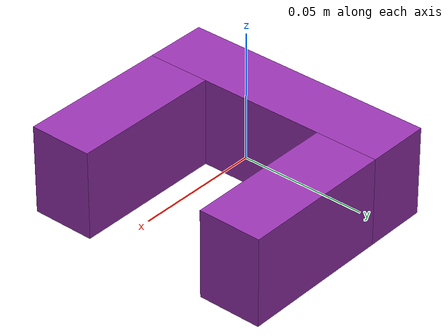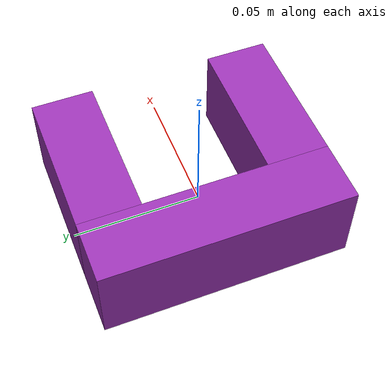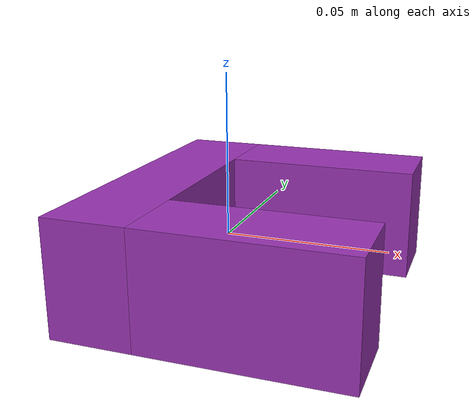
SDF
<?xml version='1.0'?>
<sdf version='1.6'>
  <model name='C_shape'>
    <link name='link'>
      <inertial>
        <mass>0.2</mass>
        <inertia>
          <ixx>0.0003</ixx> <ixy>0</ixy> <ixz>0</ixz>
          <iyy>0.0003</iyy> <iyz>0</iyz>
          <izz>0.0006</izz>
        </inertia>
      </inertial>

      <visual name='spine_vis'>
        <pose>-0.02 0 0 0 0 0</pose>
        <geometry>
           <box><size>0.025 0.10 0.035</size></box>
        </geometry>
        <material><script><name>Gazebo/Purple</name></script></material>
      </visual>
      <collision name='spine_col'>
        <pose>-0.02 0 0 0 0 0</pose>
        <geometry>
           <box><size>0.025 0.10 0.035</size></box>
        </geometry>
        <surface>
           <friction><ode><mu>100.0</mu><mu2>100.0</mu2></ode></friction>
           <contact><ode><kp>100000.0</kp><kd>1.0</kd><min_depth>0.001</min_depth></ode></contact>
        </surface>
      </collision>

      <visual name='top_vis'>
        <pose>0.0225 0.0375 0 0 0 0</pose>
        <geometry>
           <box><size>0.06 0.025 0.035</size></box>
        </geometry>
        <material><script><name>Gazebo/Purple</name></script></material>
      </visual>
      <collision name='top_col'>
        <pose>0.0225 0.0375 0 0 0 0</pose>
        <geometry>
           <box><size>0.06 0.025 0.035</size></box>
        </geometry>
        <surface>
           <friction><ode><mu>100.0</mu><mu2>100.0</mu2></ode></friction>
           <contact><ode><kp>100000.0</kp><kd>1.0</kd><min_depth>0.001</min_depth></ode></contact>
        </surface>
      </collision>

      <visual name='bot_vis'>
        <pose>0.0225 -0.0375 0 0 0 0</pose>
        <geometry>
           <box><size>0.06 0.025 0.035</size></box>
        </geometry>
        <material><script><name>Gazebo/Purple</name></script></material>
      </visual>
      <collision name='bot_col'>
        <pose>0.0225 -0.0375 0 0 0 0</pose>
        <geometry>
           <box><size>0.06 0.025 0.035</size></box>
        </geometry>
        <surface>
           <friction><ode><mu>100.0</mu><mu2>100.0</mu2></ode></friction>
           <contact><ode><kp>100000.0</kp><kd>1.0</kd><min_depth>0.001</min_depth></ode></contact>
        </surface>
      </collision>

    </link>
  </model>
</sdf>
